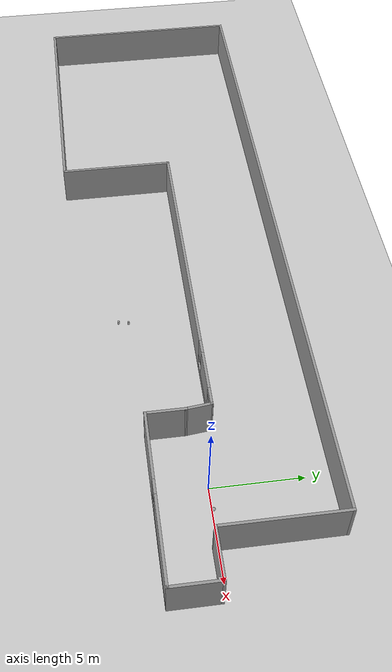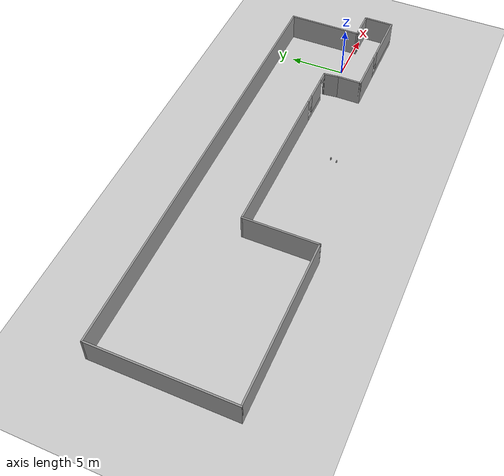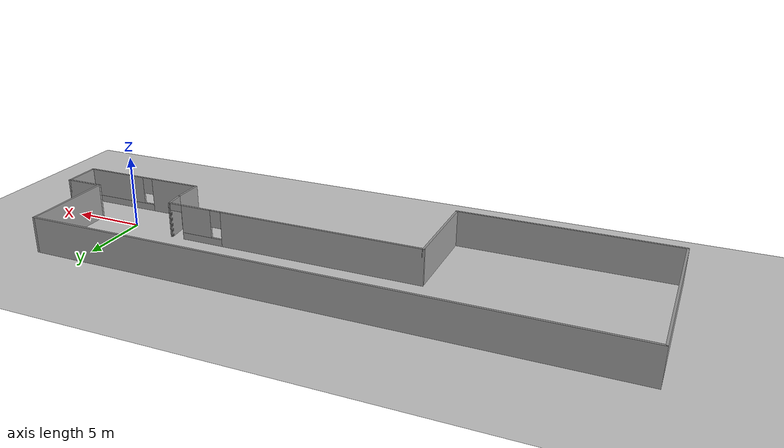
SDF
<sdf version="1.6">
 <world name="default">
  <plugin name="hello" filename="libhello.so"/>
  <light name="sun" type="directional">
   <pose>0 0 10 0 -0 0</pose>
   <diffuse>0.8 0.8 0.8 1</diffuse>
   <specular>0.2 0.2 0.2 1</specular>
   <attenuation>
    <range>1000</range>
    <constant>0.9</constant>
    <linear>0.01</linear>
    <quadratic>0.001</quadratic>
   </attenuation>
   <direction>-0.5 0.1 -0.9</direction>
  </light>
  <model name="ground_plane">
   <static>1</static>
   <link name="link">
    <collision name="collision">
     <geometry><plane><normal>0 0 1</normal><size>100 100</size></plane></geometry>
     <surface>
      <contact><collide_bitmask>65535</collide_bitmask></contact>
      <friction><ode><mu>100</mu><mu2>50</mu2></ode></friction>
     </surface>
    </collision>
    <visual name="visual">
     <cast_shadows>0</cast_shadows>
     <geometry><plane><normal>0 0 1</normal><size>100 100</size></plane></geometry>
     <material>
      <script><uri>file://media/materials/scripts/gazebo.material</uri><name>Gazebo/Grey</name></script>
     </material>
    </visual>
   </link>
  </model>
  <gravity>0 0 -9.8</gravity>
  <magnetic_field>6e-06 2.3e-05 -4.2e-05</magnetic_field>
  <atmosphere type="adiabatic"/>
  <physics name="default_physics" default="0" type="ode">
   <max_step_size>0.001</max_step_size>
   <real_time_factor>1</real_time_factor>
   <real_time_update_rate>1000</real_time_update_rate>
  </physics>
  <scene><ambient>0.4 0.4 0.4 1</ambient><background>0.7 0.7 0.7 1</background><shadows>1</shadows></scene>
  <spherical_coordinates>
   <surface_model>EARTH_WGS84</surface_model>
   <latitude_deg>0</latitude_deg>
   <longitude_deg>0</longitude_deg>
   <elevation>0</elevation>
   <heading_deg>0</heading_deg>
  </spherical_coordinates>
  <model name="beer">
   <link name="link">
    <pose>0 0 0.115 0 -0 0</pose>
    <inertial>
     <mass>0.39</mass>
     <inertia><ixx>0.00058</ixx><ixy>0</ixy><ixz>0</ixz><iyy>0.00058</iyy><iyz>0</iyz><izz>0.00019</izz></inertia>
    </inertial>
    <collision name="collision">
     <geometry><cylinder><radius>0.055</radius><length>0.23</length></cylinder></geometry>
    </collision>
    <visual name="visual">
     <geometry><cylinder><radius>0.055</radius><length>0.23</length></cylinder></geometry>
     <material>
      <script>
       <uri>model://beer/materials/scripts</uri>
       <uri>model://beer/materials/textures</uri>
       <name>Beer/Diffuse</name>
      </script>
     </material>
    </visual>
   </link>
   <pose>-11.0956 -3.56672 -7e-06 -1e-06 -0 -3.3e-05</pose>
  </model>
  <model name="beer_clone">
   <link name="link">
    <pose>0 0 0.115 0 -0 0</pose>
    <inertial>
     <mass>0.39</mass>
     <inertia><ixx>0.00058</ixx><ixy>0</ixy><ixz>0</ixz><iyy>0.00058</iyy><iyz>0</iyz><izz>0.00019</izz></inertia>
    </inertial>
    <collision name="collision">
     <geometry><cylinder><radius>0.055</radius><length>0.23</length></cylinder></geometry>
    </collision>
    <visual name="visual">
     <geometry><cylinder><radius>0.055</radius><length>0.23</length></cylinder></geometry>
     <material>
      <script>
       <uri>model://beer/materials/scripts</uri>
       <uri>model://beer/materials/textures</uri>
       <name>Beer/Diffuse</name>
      </script>
     </material>
    </visual>
   </link>
   <pose>-11 -3 -3e-06 0 0 -3.1e-05</pose>
  </model>
  <model name="building_0">
   <pose>-15.27 0.205 0 0 -0 0</pose>
   <link name="Wall_0">
    <collision name="Wall_0_Collision">
     <geometry><box><size>2.25 0.15 2.5</size></box></geometry>
     <pose>0 0 1.25 0 -0 0</pose>
    </collision>
    <visual name="Wall_0_Visual">
     <pose>0 0 1.25 0 -0 0</pose>
     <geometry><box><size>2.25 0.15 2.5</size></box></geometry>
     <material>
      <script><uri>file://media/materials/scripts/gazebo.material</uri><name>Gazebo/Grey</name></script>
      <ambient>1 1 1 1</ambient>
     </material>
     <meta><layer>0</layer></meta>
    </visual>
    <pose>12 -1.975 0 0 0 -1.5708</pose>
   </link>
   <link name="Wall_1">
    <pose>16.55 -3.025 0 0 -0 0</pose>
    <visual name="Wall_1_Visual_0">
     <pose>-2.71722 0 1.25 0 -0 0</pose>
     <geometry><box><size>3.81556 0.15 2.5</size></box></geometry>
     <material>
      <script><uri>file://media/materials/scripts/gazebo.material</uri><name>Gazebo/Grey</name></script>
      <ambient>1 1 1 1</ambient>
     </material>
     <meta><layer>0</layer></meta>
    </visual>
    <collision name="Wall_1_Collision_0">
     <geometry><box><size>3.81556 0.15 2.5</size></box></geometry>
     <pose>-2.71722 0 1.25 0 -0 0</pose>
    </collision>
    <visual name="Wall_1_Visual_1">
     <pose>1.90778 0 0.25 0 -0 0</pose>
     <geometry><box><size>5.43444 0.15 0.5</size></box></geometry>
     <material>
      <script><uri>file://media/materials/scripts/gazebo.material</uri><name>Gazebo/Grey</name></script>
      <ambient>1 1 1 1</ambient>
     </material>
     <meta><layer>0</layer></meta>
    </visual>
    <collision name="Wall_1_Collision_1">
     <geometry><box><size>5.43444 0.15 0.5</size></box></geometry>
     <pose>1.90778 0 0.25 0 -0 0</pose>
    </collision>
    <visual name="Wall_1_Visual_2">
     <pose>2.30778 0 1.5 0 -0 0</pose>
     <geometry><box><size>4.63444 0.15 2</size></box></geometry>
     <material>
      <script><uri>file://media/materials/scripts/gazebo.material</uri><name>Gazebo/Grey</name></script>
      <ambient>1 1 1 1</ambient>
     </material>
     <meta><layer>0</layer></meta>
    </visual>
    <collision name="Wall_1_Collision_2">
     <geometry><box><size>4.63444 0.15 2</size></box></geometry>
     <pose>2.30778 0 1.5 0 -0 0</pose>
    </collision>
    <visual name="Wall_1_Visual_3">
     <pose>-0.409442 0 1.9 0 -0 0</pose>
     <geometry><box><size>0.8 0.15 1.2</size></box></geometry>
     <material>
      <script><uri>file://media/materials/scripts/gazebo.material</uri><name>Gazebo/Grey</name></script>
      <ambient>1 1 1 1</ambient>
     </material>
     <meta><layer>0</layer></meta>
    </visual>
    <collision name="Wall_1_Collision_3">
     <geometry><box><size>0.8 0.15 1.2</size></box></geometry>
     <pose>-0.409442 0 1.9 0 -0 0</pose>
    </collision>
   </link>
   <link name="Wall_10">
    <pose>2.675 0.425 0 0 -0 0</pose>
    <visual name="Wall_10_Visual_0">
     <pose>-2.05912 0 1.25 0 -0 0</pose>
     <geometry><box><size>14.3818 0.15 2.5</size></box></geometry>
     <material>
      <script><uri>file://media/materials/scripts/gazebo.material</uri><name>Gazebo/Grey</name></script>
      <ambient>1 1 1 1</ambient>
     </material>
     <meta><layer>0</layer></meta>
    </visual>
    <collision name="Wall_10_Collision_0">
     <geometry><box><size>14.3818 0.15 2.5</size></box></geometry>
     <pose>-2.05912 0 1.25 0 -0 0</pose>
    </collision>
    <visual name="Wall_10_Visual_1">
     <pose>9.1772 0 1.25 0 -0 0</pose>
     <geometry><box><size>0.145609 0.15 2.5</size></box></geometry>
     <material>
      <script><uri>file://media/materials/scripts/gazebo.material</uri><name>Gazebo/Grey</name></script>
      <ambient>1 1 1 1</ambient>
     </material>
     <meta><layer>0</layer></meta>
    </visual>
    <collision name="Wall_10_Collision_1">
     <geometry><box><size>0.145609 0.15 2.5</size></box></geometry>
     <pose>9.1772 0 1.25 0 -0 0</pose>
    </collision>
    <visual name="Wall_10_Visual_2">
     <pose>6.66807 0 0.25 0 -0 0</pose>
     <geometry><box><size>3.07263 0.15 0.5</size></box></geometry>
     <material>
      <script><uri>file://media/materials/scripts/gazebo.material</uri><name>Gazebo/Grey</name></script>
      <ambient>1 1 1 1</ambient>
     </material>
     <meta><layer>0</layer></meta>
    </visual>
    <collision name="Wall_10_Collision_2">
     <geometry><box><size>3.07263 0.15 0.5</size></box></geometry>
     <pose>6.66807 0 0.25 0 -0 0</pose>
    </collision>
    <visual name="Wall_10_Visual_3">
     <pose>7.06808 0 1.5 0 -0 0</pose>
     <geometry><box><size>2.27263 0.15 2</size></box></geometry>
     <material>
      <script><uri>file://media/materials/scripts/gazebo.material</uri><name>Gazebo/Grey</name></script>
      <ambient>1 1 1 1</ambient>
     </material>
     <meta><layer>0</layer></meta>
    </visual>
    <collision name="Wall_10_Collision_3">
     <geometry><box><size>2.27263 0.15 2</size></box></geometry>
     <pose>7.06808 0 1.5 0 -0 0</pose>
    </collision>
    <visual name="Wall_10_Visual_4">
     <pose>5.53176 0 1.9 0 -0 0</pose>
     <geometry><box><size>0.8 0.15 1.2</size></box></geometry>
     <material>
      <script><uri>file://media/materials/scripts/gazebo.material</uri><name>Gazebo/Grey</name></script>
      <ambient>1 1 1 1</ambient>
     </material>
     <meta><layer>0</layer></meta>
    </visual>
    <collision name="Wall_10_Collision_4">
     <geometry><box><size>0.8 0.15 1.2</size></box></geometry>
     <pose>5.53176 0 1.9 0 -0 0</pose>
    </collision>
    <visual name="Wall_10_Visual_5">
     <pose>8.65439 0 2.25 0 -0 0</pose>
     <geometry><box><size>0.9 0.15 0.5</size></box></geometry>
     <material>
      <script><uri>file://media/materials/scripts/gazebo.material</uri><name>Gazebo/Grey</name></script>
      <ambient>1 1 1 1</ambient>
     </material>
     <meta><layer>0</layer></meta>
    </visual>
    <collision name="Wall_10_Collision_5">
     <geometry><box><size>0.9 0.15 0.5</size></box></geometry>
     <pose>8.65439 0 2.25 0 -0 0</pose>
    </collision>
   </link>
   <link name="Wall_12">
    <collision name="Wall_12_Collision">
     <geometry><box><size>1.50831 0.15 2.5</size></box></geometry>
     <pose>0 0 1.25 0 -0 0</pose>
    </collision>
    <visual name="Wall_12_Visual">
     <pose>0 0 1.25 0 -0 0</pose>
     <geometry><box><size>1.50831 0.15 2.5</size></box></geometry>
     <material>
      <script><uri>file://media/materials/scripts/gazebo.material</uri><name>Gazebo/Grey</name></script>
      <ambient>1 1 1 1</ambient>
     </material>
     <meta><layer>0</layer></meta>
    </visual>
    <pose>11.925 -0.25 0 0 -0 1.68145</pose>
   </link>
   <link name="Wall_2">
    <collision name="Wall_2_Collision">
     <geometry><box><size>2.75 0.15 2.5</size></box></geometry>
     <pose>0 0 1.25 0 -0 0</pose>
    </collision>
    <visual name="Wall_2_Visual">
     <pose>0 0 1.25 0 -0 0</pose>
     <geometry><box><size>2.75 0.15 2.5</size></box></geometry>
     <material>
      <script><uri>file://media/materials/scripts/gazebo.material</uri><name>Gazebo/Grey</name></script>
      <ambient>1 1 1 1</ambient>
     </material>
     <meta><layer>0</layer></meta>
    </visual>
    <pose>21.1 -1.725 0 0 -0 1.5708</pose>
   </link>
   <link name="Wall_3">
    <collision name="Wall_3_Collision">
     <geometry><box><size>2.75 0.15 2.5</size></box></geometry>
     <pose>0 0 1.25 0 -0 0</pose>
    </collision>
    <visual name="Wall_3_Visual">
     <pose>0 0 1.25 0 -0 0</pose>
     <geometry><box><size>2.75 0.15 2.5</size></box></geometry>
     <material>
      <script><uri>file://media/materials/scripts/gazebo.material</uri><name>Gazebo/Grey</name></script>
      <ambient>1 1 1 1</ambient>
     </material>
     <meta><layer>0</layer></meta>
    </visual>
    <pose>19.8 -0.425 0 0 -0 3.14159</pose>
   </link>
   <link name="Wall_5">
    <collision name="Wall_5_Collision">
     <geometry><box><size>6.75 0.15 2.5</size></box></geometry>
     <pose>0 0 1.25 0 -0 0</pose>
    </collision>
    <visual name="Wall_5_Visual">
     <pose>0 0 1.25 0 -0 0</pose>
     <geometry><box><size>6.75 0.15 2.5</size></box></geometry>
     <material>
      <script><uri>file://media/materials/scripts/gazebo.material</uri><name>Gazebo/Grey</name></script>
      <ambient>1 1 1 1</ambient>
     </material>
     <meta><layer>0</layer></meta>
    </visual>
    <pose>18.5 2.875 0 0 -0 1.5708</pose>
   </link>
   <link name="Wall_6">
    <collision name="Wall_6_Collision">
     <geometry><box><size>39.75 0.15 2.5</size></box></geometry>
     <pose>0 0 1.25 0 -0 0</pose>
    </collision>
    <visual name="Wall_6_Visual">
     <pose>0 0 1.25 0 -0 0</pose>
     <geometry><box><size>39.75 0.15 2.5</size></box></geometry>
     <material>
      <script><uri>file://media/materials/scripts/gazebo.material</uri><name>Gazebo/Grey</name></script>
      <ambient>1 1 1 1</ambient>
     </material>
     <meta><layer>0</layer></meta>
    </visual>
    <pose>-1.3 6.175 0 0 -0 3.14159</pose>
   </link>
   <link name="Wall_7">
    <collision name="Wall_7_Collision">
     <geometry><box><size>12.5 0.15 2.5</size></box></geometry>
     <pose>0 0 1.25 0 -0 0</pose>
    </collision>
    <visual name="Wall_7_Visual">
     <pose>0 0 1.25 0 -0 0</pose>
     <geometry><box><size>12.5 0.15 2.5</size></box></geometry>
     <material>
      <script><uri>file://media/materials/scripts/gazebo.material</uri><name>Gazebo/Grey</name></script>
      <ambient>1 1 1 1</ambient>
     </material>
     <meta><layer>0</layer></meta>
    </visual>
    <pose>-21.1 0 0 0 0 -1.5708</pose>
   </link>
   <link name="Wall_8">
    <collision name="Wall_8_Collision">
     <geometry><box><size>14.75 0.15 2.5</size></box></geometry>
     <pose>0 0 1.25 0 -0 0</pose>
    </collision>
    <visual name="Wall_8_Visual">
     <pose>0 0 1.25 0 -0 0</pose>
     <geometry><box><size>14.75 0.15 2.5</size></box></geometry>
     <material>
      <script><uri>file://media/materials/scripts/gazebo.material</uri><name>Gazebo/Grey</name></script>
      <ambient>1 1 1 1</ambient>
     </material>
     <meta><layer>0</layer></meta>
    </visual>
    <pose>-13.8 -6.175 0 0 -0 0</pose>
   </link>
   <link name="Wall_9">
    <collision name="Wall_9_Collision">
     <geometry><box><size>6.75 0.15 2.5</size></box></geometry>
     <pose>0 0 1.25 0 -0 0</pose>
    </collision>
    <visual name="Wall_9_Visual">
     <pose>0 0 1.25 0 -0 0</pose>
     <geometry><box><size>6.75 0.15 2.5</size></box></geometry>
     <material>
      <script><uri>file://media/materials/scripts/gazebo.material</uri><name>Gazebo/Grey</name></script>
      <ambient>1 1 1 1</ambient>
     </material>
     <meta><layer>0</layer></meta>
    </visual>
    <pose>-6.5 -2.875 0 0 -0 1.5708</pose>
   </link>
   <static>1</static>
  </model>
  <model name="my_ball">
   <link name="link_0">
    <inertial>
     <mass>1</mass>
     <inertia><ixx>0.1</ixx><ixy>0</ixy><ixz>0</ixz><iyy>0.1</iyy><iyz>0</iyz><izz>0.1</izz></inertia>
    </inertial>
    <visual name="visual">
     <geometry><sphere><radius>0.1</radius></sphere></geometry>
     <material>
      <lighting>1</lighting>
      <script><uri>file://media/materials/scripts/gazebo.material</uri><name>Gazebo/Grey</name></script>
      <shader type="pixel"><normal_map>__default__</normal_map></shader>
      <ambient>1 1 1 1</ambient>
      <diffuse>1 1 1 1</diffuse>
      <specular>1 1 1 1</specular>
      <emissive>1 1 1 1</emissive>
     </material>
    </visual>
    <collision name="collision">
     <geometry><sphere><radius>0.1</radius></sphere></geometry>
     <surface>
      <friction>
       <ode><mu>1</mu><mu2>1</mu2><fdir1>0 0 0</fdir1><slip1>0</slip1><slip2>0</slip2></ode>
       <torsional>
        <coefficient>1</coefficient>
        <patch_radius>0</patch_radius>
        <surface_radius>0</surface_radius>
        <use_patch_radius>1</use_patch_radius>
        <ode><slip>0</slip></ode>
       </torsional>
      </friction>
      <bounce><restitution_coefficient>0</restitution_coefficient><threshold>1e+06</threshold></bounce>
      <contact>
       <collide_without_contact>0</collide_without_contact>
       <collide_without_contact_bitmask>1</collide_without_contact_bitmask>
       <collide_bitmask>1</collide_bitmask>
       <ode>
        <soft_cfm>0</soft_cfm>
        <soft_erp>0.2</soft_erp>
        <kp>1e+13</kp>
        <kd>1</kd>
        <max_vel>0.01</max_vel>
        <min_depth>0</min_depth>
       </ode>
       <bullet>
        <split_impulse>1</split_impulse>
        <split_impulse_penetration_threshold>-0.01</split_impulse_penetration_threshold>
        <soft_cfm>0</soft_cfm>
        <soft_erp>0.2</soft_erp>
        <kp>1e+13</kp>
        <kd>1</kd>
       </bullet>
      </contact>
     </surface>
    </collision>
   </link>
   <static>0</static>
   <pose>1.17921 0.083847 0.1 0 -0 0</pose>
  </model>
 </world>
</sdf>
